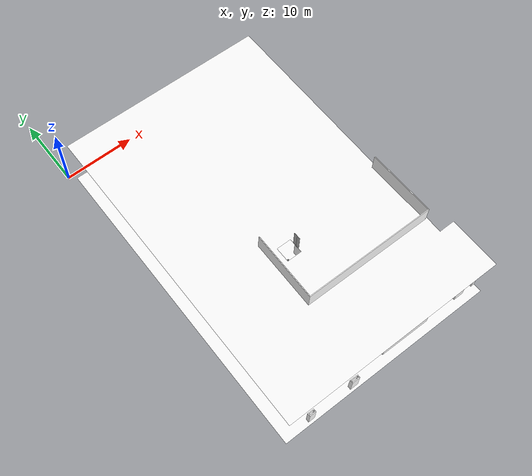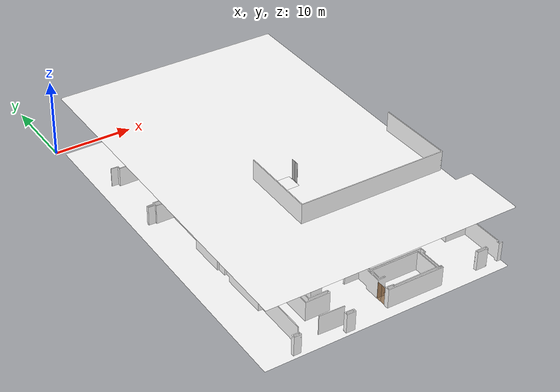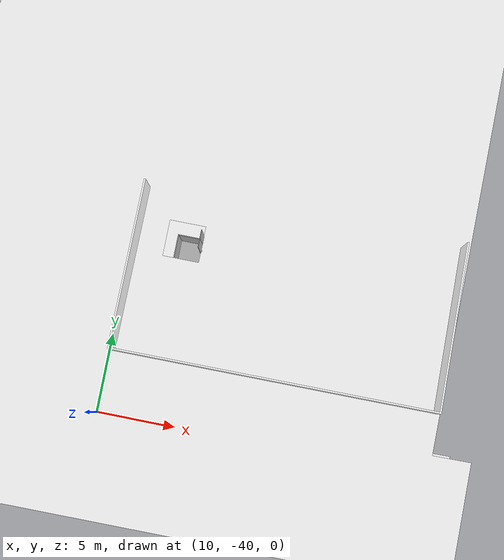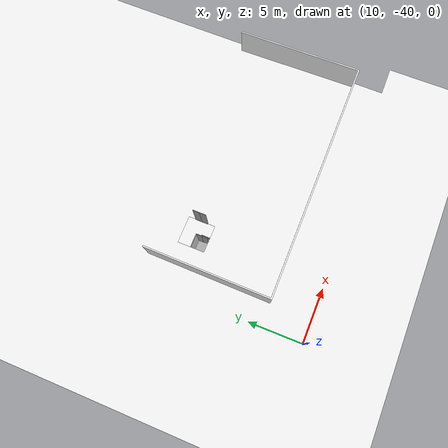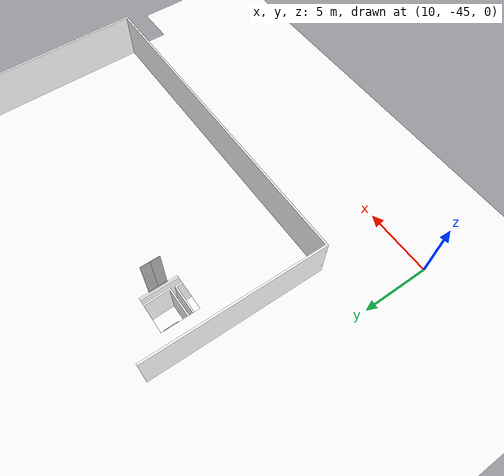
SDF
<sdf version="1.7">
 <world name="sim_world">
  <physics name="10ms" type="ode">
   <max_step_size>0.01</max_step_size>
   <real_time_factor>1.0</real_time_factor>
  </physics>
  <plugin filename="gz-sim-physics-system" name="gz::sim::systems::Physics"/>
  <plugin filename="gz-sim-user-commands-system" name="gz::sim::systems::UserCommands"/>
  <plugin filename="gz-sim-scene-broadcaster-system" name="gz::sim::systems::SceneBroadcaster"/>
  <plugin filename="libdoor.so" name="door"/>
  <plugin filename="liblift.so" name="lift"/>
  <scene><ambient>1 1 1</ambient><background>0.8 0.8 0.8</background><grid>false</grid></scene>
  <light type="directional" name="sun">
   <pose>0 0 10 0 0 0</pose>
   <diffuse>1 1 1 1</diffuse>
   <specular>0.2 0.2 0.2 1</specular>
   <attenuation>
    <range>1000</range>
    <constant>0.09</constant>
    <linear>0.001</linear>
    <quadratic>0.001</quadratic>
   </attenuation>
   <direction>-0.5 0.1 -0.9</direction>
  </light>
  <model name="door_L1_01">
   <pose>18.858629951396367 -31.653340333061877 0.0 0 0 3.1201089760456426</pose>
   <link name="right">
    <pose>0.6966441090330155 0 1.11 0 0 0</pose>
    <visual name="right_visual">
     <geometry><box><size>1.383288218066031 0.03 2.2</size></box></geometry>
     <material>
      <ambient>0.5 0.25 0 0.6</ambient>
      <diffuse>0.5 0.25 0 0.6</diffuse>
      <pbr><metal><metalness>0.0</metalness></metal></pbr>
     </material>
    </visual>
    <collision name="right_collision">
     <geometry><box><size>1.383288218066031 0.03 2.2</size></box></geometry>
     <surface><contact><collide_bitmask>0x02</collide_bitmask></contact></surface>
    </collision>
    <inertial>
     <mass>50.0</mass>
     <inertia><ixx>20.17041666666667</ixx><iyy>28.139526226001237</iyy><izz>7.976609559334564</izz></inertia>
    </inertial>
   </link>
   <joint name="right_joint" type="revolute">
    <parent>world</parent>
    <child>right</child>
    <axis><xyz>0 0 -1</xyz><limit><lower>0</lower><upper>1.57</upper></limit></axis>
    <pose>0.6966441090330155 0 0 0 0 0</pose>
   </joint>
   <link name="left">
    <pose>-0.6966441090330155 0 1.11 0 0 0</pose>
    <visual name="left_visual">
     <geometry><box><size>1.383288218066031 0.03 2.2</size></box></geometry>
     <material>
      <ambient>0.5 0.25 0 0.6</ambient>
      <diffuse>0.5 0.25 0 0.6</diffuse>
      <pbr><metal><metalness>0.0</metalness></metal></pbr>
     </material>
    </visual>
    <collision name="left_collision">
     <geometry><box><size>1.383288218066031 0.03 2.2</size></box></geometry>
     <surface><contact><collide_bitmask>0x02</collide_bitmask></contact></surface>
    </collision>
    <inertial>
     <mass>50.0</mass>
     <inertia><ixx>20.17041666666667</ixx><iyy>28.139526226001237</iyy><izz>7.976609559334564</izz></inertia>
    </inertial>
   </link>
   <joint name="left_joint" type="revolute">
    <parent>world</parent>
    <child>left</child>
    <axis><xyz>0 0 -1</xyz><limit><lower>-1.57</lower><upper>0</upper></limit></axis>
    <pose>-0.6966441090330155 0 0 0 0 0</pose>
   </joint>
   <plugin name="register_component" filename="libregister_component.so">
    <component name="Door">
     <v_max_door>0.5</v_max_door>
     <a_max_door>0.3</a_max_door>
     <a_nom_door>0.15</a_nom_door>
     <dx_min_door>0.01</dx_min_door>
     <f_max_door>500.0</f_max_door>
     <ros_interface>true</ros_interface>
     <door name="door_L1_01" type="DoubleSwingDoor" left_joint_name="left_joint" right_joint_name="right_joint"/>
    </component>
   </plugin>
  </model>
  <model name="door_L1_02">
   <pose>22.098747293023976 -31.696777367371695 0.0 0 0 3.1320340084648444</pose>
   <link name="right">
    <pose>0.7065116205484322 0 1.11 0 0 0</pose>
    <visual name="right_visual">
     <geometry><box><size>1.4030232410968644 0.03 2.2</size></box></geometry>
     <material>
      <ambient>0.5 0.25 0 0.6</ambient>
      <diffuse>0.5 0.25 0 0.6</diffuse>
      <pbr><metal><metalness>0.0</metalness></metal></pbr>
     </material>
    </visual>
    <collision name="right_collision">
     <geometry><box><size>1.4030232410968644 0.03 2.2</size></box></geometry>
     <surface><contact><collide_bitmask>0x02</collide_bitmask></contact></surface>
    </collision>
    <inertial>
     <mass>50.0</mass>
     <inertia><ixx>20.17041666666667</ixx><iyy>28.368642562741464</iyy><izz>8.205725896074792</izz></inertia>
    </inertial>
   </link>
   <joint name="right_joint" type="revolute">
    <parent>world</parent>
    <child>right</child>
    <axis><xyz>0 0 -1</xyz><limit><lower>0</lower><upper>1.57</upper></limit></axis>
    <pose>0.7065116205484322 0 0 0 0 0</pose>
   </joint>
   <link name="left">
    <pose>-0.7065116205484322 0 1.11 0 0 0</pose>
    <visual name="left_visual">
     <geometry><box><size>1.4030232410968644 0.03 2.2</size></box></geometry>
     <material>
      <ambient>0.5 0.25 0 0.6</ambient>
      <diffuse>0.5 0.25 0 0.6</diffuse>
      <pbr><metal><metalness>0.0</metalness></metal></pbr>
     </material>
    </visual>
    <collision name="left_collision">
     <geometry><box><size>1.4030232410968644 0.03 2.2</size></box></geometry>
     <surface><contact><collide_bitmask>0x02</collide_bitmask></contact></surface>
    </collision>
    <inertial>
     <mass>50.0</mass>
     <inertia><ixx>20.17041666666667</ixx><iyy>28.368642562741464</iyy><izz>8.205725896074792</izz></inertia>
    </inertial>
   </link>
   <joint name="left_joint" type="revolute">
    <parent>world</parent>
    <child>left</child>
    <axis><xyz>0 0 -1</xyz><limit><lower>-1.57</lower><upper>0</upper></limit></axis>
    <pose>-0.7065116205484322 0 0 0 0 0</pose>
   </joint>
   <plugin name="register_component" filename="libregister_component.so">
    <component name="Door">
     <v_max_door>0.5</v_max_door>
     <a_max_door>0.3</a_max_door>
     <a_nom_door>0.15</a_nom_door>
     <dx_min_door>0.01</dx_min_door>
     <f_max_door>500.0</f_max_door>
     <ros_interface>true</ros_interface>
     <door name="door_L1_02" type="DoubleSwingDoor" left_joint_name="left_joint" right_joint_name="right_joint"/>
    </component>
   </plugin>
  </model>
  <model name="door_L1_03">
   <pose>16.926274421557505 -43.24632674380877 0.0 0 0 -1.5878908456116652</pose>
   <link name="right">
    <pose>0.3518353195416009 0 1.11 0 0 0</pose>
    <visual name="right_visual">
     <geometry><box><size>0.6936706390832018 0.03 2.2</size></box></geometry>
     <material>
      <ambient>0.5 0.25 0 0.6</ambient>
      <diffuse>0.5 0.25 0 0.6</diffuse>
      <pbr><metal><metalness>0.0</metalness></metal></pbr>
     </material>
    </visual>
    <collision name="right_collision">
     <geometry><box><size>0.6936706390832018 0.03 2.2</size></box></geometry>
     <surface><contact><collide_bitmask>0x02</collide_bitmask></contact></surface>
    </collision>
    <inertial>
     <mass>50.0</mass>
     <inertia><ixx>20.17041666666667</ixx><iyy>22.171578981358742</iyy><izz>2.0086623146920735</izz></inertia>
    </inertial>
   </link>
   <joint name="right_joint" type="revolute">
    <parent>world</parent>
    <child>right</child>
    <axis><xyz>0 0 -1</xyz><limit><lower>0</lower><upper>1.57</upper></limit></axis>
    <pose>0.3518353195416009 0 0 0 0 0</pose>
   </joint>
   <link name="left">
    <pose>-0.3518353195416009 0 1.11 0 0 0</pose>
    <visual name="left_visual">
     <geometry><box><size>0.6936706390832018 0.03 2.2</size></box></geometry>
     <material>
      <ambient>0.5 0.25 0 0.6</ambient>
      <diffuse>0.5 0.25 0 0.6</diffuse>
      <pbr><metal><metalness>0.0</metalness></metal></pbr>
     </material>
    </visual>
    <collision name="left_collision">
     <geometry><box><size>0.6936706390832018 0.03 2.2</size></box></geometry>
     <surface><contact><collide_bitmask>0x02</collide_bitmask></contact></surface>
    </collision>
    <inertial>
     <mass>50.0</mass>
     <inertia><ixx>20.17041666666667</ixx><iyy>22.171578981358742</iyy><izz>2.0086623146920735</izz></inertia>
    </inertial>
   </link>
   <joint name="left_joint" type="revolute">
    <parent>world</parent>
    <child>left</child>
    <axis><xyz>0 0 -1</xyz><limit><lower>-1.57</lower><upper>0</upper></limit></axis>
    <pose>-0.3518353195416009 0 0 0 0 0</pose>
   </joint>
   <plugin name="register_component" filename="libregister_component.so">
    <component name="Door">
     <v_max_door>0.5</v_max_door>
     <a_max_door>0.3</a_max_door>
     <a_nom_door>0.15</a_nom_door>
     <dx_min_door>0.01</dx_min_door>
     <f_max_door>500.0</f_max_door>
     <ros_interface>true</ros_interface>
     <door name="door_L1_03" type="DoubleSwingDoor" left_joint_name="left_joint" right_joint_name="right_joint"/>
    </component>
   </plugin>
  </model>
  <model name="door_L1_04">
   <pose>17.057948904560625 -35.038243541765596 0.0 0 0 1.5642473731390851</pose>
   <link name="right">
    <pose>0 0 1.11 0 0 0</pose>
    <visual name="right_visual">
     <geometry><box><size>0.8927808382103803 0.03 2.2</size></box></geometry>
     <material>
      <ambient>0.5 0.25 0 0.6</ambient>
      <diffuse>0.5 0.25 0 0.6</diffuse>
      <pbr><metal><metalness>0.0</metalness></metal></pbr>
     </material>
    </visual>
    <collision name="right_collision">
     <geometry><box><size>0.8927808382103803 0.03 2.2</size></box></geometry>
     <surface><contact><collide_bitmask>0x02</collide_bitmask></contact></surface>
    </collision>
    <inertial>
     <mass>50.0</mass>
     <inertia><ixx>20.17041666666667</ixx><iyy>23.487740104481794</iyy><izz>3.3248234378151222</izz></inertia>
    </inertial>
   </link>
   <joint name="right_joint" type="revolute">
    <parent>world</parent>
    <child>right</child>
    <axis><xyz>0 0 1</xyz><limit><lower>0</lower><upper>1.57</upper></limit></axis>
    <pose>0.4513904191051902 0 0 0 0 0</pose>
   </joint>
   <plugin name="register_component" filename="libregister_component.so">
    <component name="Door">
     <v_max_door>0.5</v_max_door>
     <a_max_door>0.3</a_max_door>
     <a_nom_door>0.15</a_nom_door>
     <dx_min_door>0.01</dx_min_door>
     <f_max_door>500.0</f_max_door>
     <ros_interface>true</ros_interface>
     <door name="door_L1_04" type="SwingDoor" left_joint_name="empty_joint" right_joint_name="right_joint"/>
    </component>
   </plugin>
  </model>
  <model name="door_L1_05">
   <pose>23.52683058178181 -35.00832563136388 0.0 0 0 1.572758725800241</pose>
   <link name="right">
    <pose>0 0 1.11 0 0 0</pose>
    <visual name="right_visual">
     <geometry><box><size>0.8860354967296602 0.03 2.2</size></box></geometry>
     <material>
      <ambient>0.5 0.25 0 0.6</ambient>
      <diffuse>0.5 0.25 0 0.6</diffuse>
      <pbr><metal><metalness>0.0</metalness></metal></pbr>
     </material>
    </visual>
    <collision name="right_collision">
     <geometry><box><size>0.8860354967296602 0.03 2.2</size></box></geometry>
     <surface><contact><collide_bitmask>0x02</collide_bitmask></contact></surface>
    </collision>
    <inertial>
     <mass>50.0</mass>
     <inertia><ixx>20.17041666666667</ixx><iyy>23.43774542277074</iyy><izz>3.274828756104066</izz></inertia>
    </inertial>
   </link>
   <joint name="right_joint" type="prismatic">
    <parent>world</parent>
    <child>right</child>
    <axis>
     <xyz>1 0 0</xyz>
     <limit><lower>0.0</lower><upper>0.8960354967296602</upper><effort>500.0</effort></limit>
    </axis>
   </joint>
   <plugin name="register_component" filename="libregister_component.so">
    <component name="Door">
     <v_max_door>0.2</v_max_door>
     <a_max_door>0.2</a_max_door>
     <a_nom_door>0.08</a_nom_door>
     <dx_min_door>0.001</dx_min_door>
     <f_max_door>100.0</f_max_door>
     <ros_interface>true</ros_interface>
     <door name="door_L1_05" type="SlidingDoor" left_joint_name="empty_joint" right_joint_name="right_joint"/>
    </component>
   </plugin>
  </model>
  <include><name>class_L1</name><uri>model://class_L1</uri></include>
  <include><name>class_L2</name><uri>model://class_L2</uri><pose>0 0 8.0 0 0 0</pose></include>
  <model name="ShaftDoor_lift_L1_doors">
   <pose>15.066056832149144 -29.306300649039116 0.0 0 0 1.5707</pose>
   <link name="right_door">
    <pose>0.25 0 1.25 0 0 0</pose>
    <visual name="right_door_visual">
     <geometry><box><size>0.5 0.03 2.5</size></box></geometry>
     <material>
      <ambient>0.5 0.5 0.5 1</ambient>
      <diffuse>0.7 0.7 0.7 1</diffuse>
      <specular>0.6 0.6 0.6 1</specular>
      <emissive>0.1 0.1 0.1 1</emissive>
     </material>
    </visual>
    <collision name="right_door_collision">
     <geometry><box><size>0.5 0.03 2.5</size></box></geometry>
     <surface><contact><collide_bitmask>0x02</collide_bitmask></contact></surface>
    </collision>
   </link>
   <link name="left_door">
    <pose>-0.25 0 1.25 0 0 0</pose>
    <visual name="left_door_visual">
     <geometry><box><size>0.5 0.03 2.5</size></box></geometry>
     <material>
      <ambient>0.5 0.5 0.5 1</ambient>
      <diffuse>0.7 0.7 0.7 1</diffuse>
      <specular>0.6 0.6 0.6 1</specular>
      <emissive>0.1 0.1 0.1 1</emissive>
     </material>
    </visual>
    <collision name="left_door_collision">
     <geometry><box><size>0.5 0.03 2.5</size></box></geometry>
     <surface><contact><collide_bitmask>0x02</collide_bitmask></contact></surface>
    </collision>
   </link>
   <joint name="right_joint" type="prismatic">
    <parent>world</parent>
    <child>right_door</child>
    <axis><xyz>1 0 0</xyz><limit><lower>0</lower><upper>0.5</upper></limit></axis>
   </joint>
   <joint name="left_joint" type="prismatic">
    <parent>world</parent>
    <child>left_door</child>
    <axis><xyz>1 0 0</xyz><limit><lower>-0.5</lower><upper>0</upper></limit></axis>
   </joint>
   <link name="ramp">
    <pose>0 0 -0.025 0 0 0</pose>
    <visual name="ramp_visual">
     <geometry><box><size>1.0 0.1 0.05</size></box></geometry>
     <material>
      <ambient>0.5 0.5 0.5 1</ambient>
      <diffuse>0.7 0.7 0.7 1</diffuse>
      <specular>0.6 0.6 0.6 1</specular>
      <emissive>0.1 0.1 0.1 1</emissive>
     </material>
    </visual>
    <collision name="ramp_collision">
     <geometry><box><size>1.0 0.1 0.05</size></box></geometry>
     <surface><contact><collide_bitmask>0x02</collide_bitmask></contact></surface>
    </collision>
   </link>
   <joint name="ramp_joint" type="fixed"><parent>world</parent><child>ramp</child></joint>
   <plugin name="register_component" filename="libregister_component.so">
    <component name="Door">
     <v_max_door>0.3</v_max_door>
     <a_max_door>0.2</a_max_door>
     <a_nom_door>0.1</a_nom_door>
     <dx_min_door>0.0001</dx_min_door>
     <f_max_door>35.0</f_max_door>
     <door left_joint_name="left_joint" name="ShaftDoor_lift_L1_doors" right_joint_name="right_joint" type="DoubleSlidingDoor"/>
    </component>
   </plugin>
  </model>
  <model name="ShaftDoor_lift_L2_doors">
   <pose>15.066056832149144 -29.306300649039116 8.0 0 0 1.5707</pose>
   <link name="right_door">
    <pose>0.25 0 1.25 0 0 0</pose>
    <visual name="right_door_visual">
     <geometry><box><size>0.5 0.03 2.5</size></box></geometry>
     <material>
      <ambient>0.5 0.5 0.5 1</ambient>
      <diffuse>0.7 0.7 0.7 1</diffuse>
      <specular>0.6 0.6 0.6 1</specular>
      <emissive>0.1 0.1 0.1 1</emissive>
     </material>
    </visual>
    <collision name="right_door_collision">
     <geometry><box><size>0.5 0.03 2.5</size></box></geometry>
     <surface><contact><collide_bitmask>0x02</collide_bitmask></contact></surface>
    </collision>
   </link>
   <link name="left_door">
    <pose>-0.25 0 1.25 0 0 0</pose>
    <visual name="left_door_visual">
     <geometry><box><size>0.5 0.03 2.5</size></box></geometry>
     <material>
      <ambient>0.5 0.5 0.5 1</ambient>
      <diffuse>0.7 0.7 0.7 1</diffuse>
      <specular>0.6 0.6 0.6 1</specular>
      <emissive>0.1 0.1 0.1 1</emissive>
     </material>
    </visual>
    <collision name="left_door_collision">
     <geometry><box><size>0.5 0.03 2.5</size></box></geometry>
     <surface><contact><collide_bitmask>0x02</collide_bitmask></contact></surface>
    </collision>
   </link>
   <joint name="right_joint" type="prismatic">
    <parent>world</parent>
    <child>right_door</child>
    <axis><xyz>1 0 0</xyz><limit><lower>0</lower><upper>0.5</upper></limit></axis>
   </joint>
   <joint name="left_joint" type="prismatic">
    <parent>world</parent>
    <child>left_door</child>
    <axis><xyz>1 0 0</xyz><limit><lower>-0.5</lower><upper>0</upper></limit></axis>
   </joint>
   <link name="ramp">
    <pose>0 0 -0.025 0 0 0</pose>
    <visual name="ramp_visual">
     <geometry><box><size>1.0 0.1 0.05</size></box></geometry>
     <material>
      <ambient>0.5 0.5 0.5 1</ambient>
      <diffuse>0.7 0.7 0.7 1</diffuse>
      <specular>0.6 0.6 0.6 1</specular>
      <emissive>0.1 0.1 0.1 1</emissive>
     </material>
    </visual>
    <collision name="ramp_collision">
     <geometry><box><size>1.0 0.1 0.05</size></box></geometry>
     <surface><contact><collide_bitmask>0x02</collide_bitmask></contact></surface>
    </collision>
   </link>
   <joint name="ramp_joint" type="fixed"><parent>world</parent><child>ramp</child></joint>
   <plugin name="register_component" filename="libregister_component.so">
    <component name="Door">
     <v_max_door>0.3</v_max_door>
     <a_max_door>0.2</a_max_door>
     <a_nom_door>0.1</a_nom_door>
     <dx_min_door>0.0001</dx_min_door>
     <f_max_door>35.0</f_max_door>
     <door left_joint_name="left_joint" name="ShaftDoor_lift_L2_doors" right_joint_name="right_joint" type="DoubleSlidingDoor"/>
    </component>
   </plugin>
  </model>
  <model name="lift">
   <link name="platform">
    <inertial>
     <mass>1200</mass>
     <inertia><ixx>400.25000000000006</ixx><iyy>400.25000000000006</iyy><izz>800.0</izz></inertia>
    </inertial>
    <visual name="floor_visual">
     <pose>0 0 -0.025 0 0 0</pose>
     <geometry><box><size>2.0 2.0 0.05</size></box></geometry>
     <material>
      <ambient>0.5 0.5 0.5 1</ambient>
      <diffuse>0.7 0.7 0.7 1</diffuse>
      <specular>0.6 0.6 0.6 1</specular>
      <emissive>0.1 0.1 0.1 1</emissive>
     </material>
    </visual>
    <collision name="floor_collision">
     <pose>0 0 -0.025 0 0 0</pose>
     <geometry><box><size>2.0 2.0 0.05</size></box></geometry>
     <surface><contact><collide_bitmask>0x01</collide_bitmask></contact></surface>
    </collision>
    <visual name="frontwall1_visual">
     <pose>0.0 0.975 1.25 0 0 0</pose>
     <geometry><box><size>2.0 0.05 2.5</size></box></geometry>
     <material>
      <ambient>0.5 0.5 0.5 1</ambient>
      <diffuse>0.7 0.7 0.7 1</diffuse>
      <specular>0.6 0.6 0.6 1</specular>
      <emissive>0.1 0.1 0.1 1</emissive>
     </material>
    </visual>
    <collision name="frontwall1_collision">
     <pose>0.0 0.975 1.25 0 0 0</pose>
     <geometry><box><size>2.0 0.05 2.5</size></box></geometry>
     <surface><contact><collide_bitmask>0x01</collide_bitmask></contact></surface>
    </collision>
    <visual name="backwall1_visual">
     <pose>0.0 -0.975 1.25 0 0 0</pose>
     <geometry><box><size>2.0 0.05 2.5</size></box></geometry>
     <material>
      <ambient>0.5 0.5 0.5 1</ambient>
      <diffuse>0.7 0.7 0.7 1</diffuse>
      <specular>0.6 0.6 0.6 1</specular>
      <emissive>0.1 0.1 0.1 1</emissive>
     </material>
    </visual>
    <collision name="backwall1_collision">
     <pose>0.0 -0.975 1.25 0 0 0</pose>
     <geometry><box><size>2.0 0.05 2.5</size></box></geometry>
     <surface><contact><collide_bitmask>0x01</collide_bitmask></contact></surface>
    </collision>
    <visual name="leftwall1_visual">
     <pose>-0.975 0.0 1.25 0 0 1.5707963267948966</pose>
     <geometry><box><size>1.9 0.05 2.5</size></box></geometry>
     <material>
      <ambient>0.5 0.5 0.5 1</ambient>
      <diffuse>0.7 0.7 0.7 1</diffuse>
      <specular>0.6 0.6 0.6 1</specular>
      <emissive>0.1 0.1 0.1 1</emissive>
     </material>
    </visual>
    <collision name="leftwall1_collision">
     <pose>-0.975 0.0 1.25 0 0 1.5707963267948966</pose>
     <geometry><box><size>1.9 0.05 2.5</size></box></geometry>
     <surface><contact><collide_bitmask>0x01</collide_bitmask></contact></surface>
    </collision>
    <visual name="rightwall1_visual">
     <pose>0.975 -0.725 1.25 0 0 1.5707963267948966</pose>
     <geometry><box><size>0.44999999999999996 0.05 2.5</size></box></geometry>
     <material>
      <ambient>0.5 0.5 0.5 1</ambient>
      <diffuse>0.7 0.7 0.7 1</diffuse>
      <specular>0.6 0.6 0.6 1</specular>
      <emissive>0.1 0.1 0.1 1</emissive>
     </material>
    </visual>
    <collision name="rightwall1_collision">
     <pose>0.975 -0.725 1.25 0 0 1.5707963267948966</pose>
     <geometry><box><size>0.44999999999999996 0.05 2.5</size></box></geometry>
     <surface><contact><collide_bitmask>0x01</collide_bitmask></contact></surface>
    </collision>
    <visual name="rightwall2_visual">
     <pose>0.975 0.725 1.25 0 0 1.5707963267948966</pose>
     <geometry><box><size>0.44999999999999996 0.05 2.5</size></box></geometry>
     <material>
      <ambient>0.5 0.5 0.5 1</ambient>
      <diffuse>0.7 0.7 0.7 1</diffuse>
      <specular>0.6 0.6 0.6 1</specular>
      <emissive>0.1 0.1 0.1 1</emissive>
     </material>
    </visual>
    <collision name="rightwall2_collision">
     <pose>0.975 0.725 1.25 0 0 1.5707963267948966</pose>
     <geometry><box><size>0.44999999999999996 0.05 2.5</size></box></geometry>
     <surface><contact><collide_bitmask>0x01</collide_bitmask></contact></surface>
    </collision>
   </link>
   <joint name="cabin_joint" type="prismatic">
    <parent>world</parent>
    <child>platform</child>
    <axis><xyz>0 0 1</xyz></axis>
   </joint>
   <model name="CabinDoor_lift_doors">
    <pose>0.975 0.0 0 0 0 1.5707</pose>
    <link name="right_door">
     <pose>0.25 0 1.25 0 0 0</pose>
     <visual name="right_door_visual">
      <geometry><box><size>0.5 0.03 2.5</size></box></geometry>
      <material>
       <ambient>0.5 0.5 0.5 1</ambient>
       <diffuse>0.7 0.7 0.7 1</diffuse>
       <specular>0.6 0.6 0.6 1</specular>
       <emissive>0.1 0.1 0.1 1</emissive>
      </material>
     </visual>
     <collision name="right_door_collision">
      <geometry><box><size>0.5 0.03 2.5</size></box></geometry>
      <surface><contact><collide_bitmask>0x02</collide_bitmask></contact></surface>
     </collision>
    </link>
    <link name="left_door">
     <pose>-0.25 0 1.25 0 0 0</pose>
     <visual name="left_door_visual">
      <geometry><box><size>0.5 0.03 2.5</size></box></geometry>
      <material>
       <ambient>0.5 0.5 0.5 1</ambient>
       <diffuse>0.7 0.7 0.7 1</diffuse>
       <specular>0.6 0.6 0.6 1</specular>
       <emissive>0.1 0.1 0.1 1</emissive>
      </material>
     </visual>
     <collision name="left_door_collision">
      <geometry><box><size>0.5 0.03 2.5</size></box></geometry>
      <surface><contact><collide_bitmask>0x02</collide_bitmask></contact></surface>
     </collision>
    </link>
    <plugin name="register_component" filename="libregister_component.so">
     <component name="Door">
      <v_max_door>0.3</v_max_door>
      <a_max_door>0.2</a_max_door>
      <a_nom_door>0.1</a_nom_door>
      <dx_min_door>0.0001</dx_min_door>
      <f_max_door>35.0</f_max_door>
      <door left_joint_name="CabinDoor_lift_doors_left_joint" name="CabinDoor_lift_doors" right_joint_name="CabinDoor_lift_doors_right_joint" type="DoubleSlidingDoor"/>
     </component>
    </plugin>
   </model>
   <joint name="CabinDoor_lift_doors_right_joint" type="prismatic">
    <parent>platform</parent>
    <child>CabinDoor_lift_doors::right_door</child>
    <axis><xyz>1 0 0</xyz><limit><lower>0</lower><upper>0.5</upper></limit></axis>
   </joint>
   <joint name="CabinDoor_lift_doors_left_joint" type="prismatic">
    <parent>platform</parent>
    <child>CabinDoor_lift_doors::left_door</child>
    <axis><xyz>1 0 0</xyz><limit><lower>-0.5</lower><upper>0</upper></limit></axis>
   </joint>
   <plugin name="register_component" filename="libregister_component.so">
    <component name="Lift">
     <lift_name>lift</lift_name>
     <floor name="L1" elevation="0.0">
      <door_pair cabin_door="CabinDoor_lift_doors" shaft_door="ShaftDoor_lift_L1_doors"/>
     </floor>
     <floor name="L2" elevation="8.0">
      <door_pair cabin_door="CabinDoor_lift_doors" shaft_door="ShaftDoor_lift_L2_doors"/>
     </floor>
     <initial_floor>L1</initial_floor>
     <v_max_cabin>2.0</v_max_cabin>
     <a_max_cabin>1.2</a_max_cabin>
     <a_nom_cabin>1.0</a_nom_cabin>
     <dx_min_cabin>0.001</dx_min_cabin>
     <f_max_cabin>25323.0</f_max_cabin>
     <cabin_joint_name>cabin_joint</cabin_joint_name>
    </component>
   </plugin>
   <pose>14.016056832149143 -29.306300649039116 0 0 0 0.0</pose>
  </model>
  <plugin name="register_component" filename="libregister_component.so"><component name="Chargers"/></plugin>
 </world>
</sdf>

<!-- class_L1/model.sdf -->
<sdf version="1.7">
  <model name="class_L1">
    <static>true</static>
    <link name="floor_1">
      <visual name="visual">
        <geometry>
          <mesh>
            <uri>model://class_L1/meshes/floor_1.obj</uri>
          </mesh>
        </geometry>
        <material>
          <diffuse>1.0 1.0 1.0</diffuse>
          <specular>0.1 0.1 0.1</specular>
          <pbr>
            <metal>
              <metalness>0.0</metalness>
              <albedo_map>model://class_L1/meshes/blue_linoleum.png</albedo_map>
            </metal>
          </pbr>
          <script>
            <uri>model://class_L1/meshes/</uri>
            <name>floor_1_Diffuse</name>
          </script>
        </material>
      </visual>
      <collision name="collision">
        <geometry>
          <mesh>
            <uri>model://class_L1/meshes/floor_1.obj</uri>
          </mesh>
        </geometry>
        <surface>
          <contact>
            <collide_bitmask>0x01</collide_bitmask>
          </contact>
        </surface>
      </collision>
    </link>
    <link name="wall_1">
      <visual name="wall_1">
        <geometry>
          <mesh>
            <uri>model://class_L1/meshes/wall_1.obj</uri>
          </mesh>
        </geometry>
        <transparency>0.0</transparency>
        <material>
          <diffuse>1.0 1.0 1.0</diffuse>
          <specular>0.1 0.1 0.1</specular>
          <pbr>
            <metal>
              <metalness>0.0</metalness>
              <albedo_map>model://class_L1/meshes/default.png</albedo_map>
            </metal>
          </pbr>
          <script>
            <uri>model://class_L1/meshes/</uri>
            <name>wall_1_Diffuse</name>
          </script>
        </material>
      </visual>
      <collision name="collision">
        <geometry>
          <mesh>
            <uri>model://class_L1/meshes/wall_1.obj</uri>
          </mesh>
        </geometry>
        <surface>
          <contact>
            <collide_bitmask>0x01</collide_bitmask>
          </contact>
        </surface>
      </collision>
      <pose>2.5237939662510755 -45.40663354858925 0 0 0 0</pose>
    </link>
  </model>
</sdf>

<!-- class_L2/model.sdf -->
<sdf version="1.7">
  <model name="class_L2">
    <static>true</static>
    <link name="floor_1">
      <visual name="visual">
        <geometry>
          <mesh>
            <uri>model://class_L2/meshes/floor_1.obj</uri>
          </mesh>
        </geometry>
        <material>
          <diffuse>1.0 1.0 1.0</diffuse>
          <specular>0.1 0.1 0.1</specular>
          <pbr>
            <metal>
              <metalness>0.0</metalness>
              <albedo_map>model://class_L2/meshes/blue_linoleum.png</albedo_map>
            </metal>
          </pbr>
          <script>
            <uri>model://class_L2/meshes/</uri>
            <name>floor_1_Diffuse</name>
          </script>
        </material>
      </visual>
      <collision name="collision">
        <geometry>
          <mesh>
            <uri>model://class_L2/meshes/floor_1.obj</uri>
          </mesh>
        </geometry>
        <surface>
          <contact>
            <collide_bitmask>0x01</collide_bitmask>
          </contact>
        </surface>
      </collision>
    </link>
    <link name="wall_1">
      <visual name="wall_1">
        <geometry>
          <mesh>
            <uri>model://class_L2/meshes/wall_1.obj</uri>
          </mesh>
        </geometry>
        <transparency>0.0</transparency>
        <material>
          <diffuse>1.0 1.0 1.0</diffuse>
          <specular>0.1 0.1 0.1</specular>
          <pbr>
            <metal>
              <metalness>0.0</metalness>
              <albedo_map>model://class_L2/meshes/default.png</albedo_map>
            </metal>
          </pbr>
          <script>
            <uri>model://class_L2/meshes/</uri>
            <name>wall_1_Diffuse</name>
          </script>
        </material>
      </visual>
      <collision name="collision">
        <geometry>
          <mesh>
            <uri>model://class_L2/meshes/wall_1.obj</uri>
          </mesh>
        </geometry>
        <surface>
          <contact>
            <collide_bitmask>0x01</collide_bitmask>
          </contact>
        </surface>
      </collision>
      <pose>11.323501198565781 -36.181859314096684 0 0 0 0</pose>
    </link>
  </model>
</sdf>
